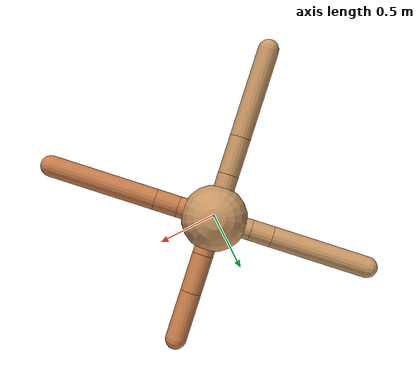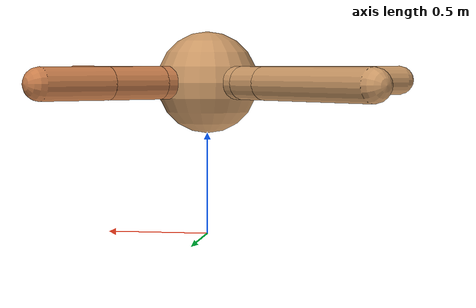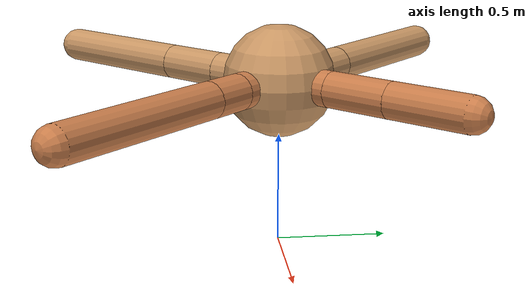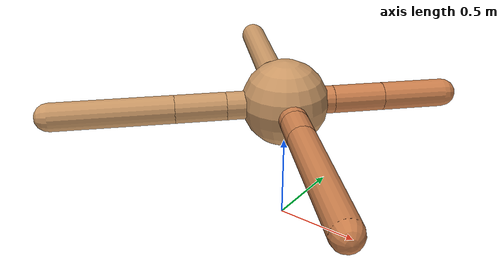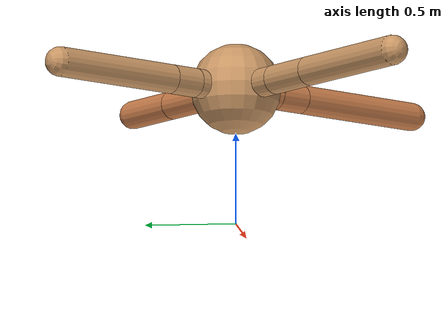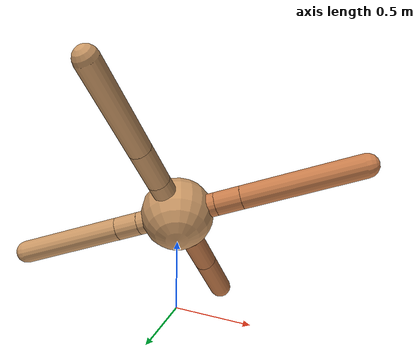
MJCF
<mujoco model="ant">
  <compiler angle="degree" coordinate="local" inertiafromgeom="true" />
  <option integrator="RK4" timestep="0.01" />
  <custom>
    <numeric data="0.0 0.0 0.55 1.0 0.0 0.0 0.0 0.0 1.0 0.0 -1.0 0.0 -1.0 0.0 1.0" name="init_qpos" />
  </custom>
  <default>
    <joint armature="1" damping="1" limited="true" />
    <geom conaffinity="0" condim="3" density="5.0" friction="1.5 0.1 0.1" margin="0.01" rgba="0.8 0.6 0.4 1" />
  </default>
  <worldbody>
    <body name="torso" pos="0 0 0.75">
      <geom name="torso_geom" pos="0 0 0" size="0.25" type="sphere" />

      <body name="front_left_leg" pos="0 0 0">
        <geom fromto="0.0 0.0 0.0 0.2 0.2 0.0" name="aux_1_geom" size="0.08" type="capsule" rgba=".8 .5 .3 1" />
        <body name="aux_1" pos="0.2 0.2 0.0">
          <joint axis="0 0 1" name="hip_1" pos="0.0 0.0 0.0" range="-40 40" type="hinge" />
          <geom fromto="0.0 0.0 0.0 0.20700240311557297 0.20700240311557297 0.0" name="left_leg_geom" size="0.08" type="capsule" rgba=".8 .5 .3 1" />
          <body pos="0.20700240311557297 0.20700240311557297 0.0" name="front_left_foot">
            <joint axis="-1 1 0" name="ankle_1" pos="0.0 0.0 0.0" range="30 100" type="hinge" />
            <geom fromto="0.0 0.0 0.0 0.25829891431069724 0.25829891431069724 0.0" name="left_ankle_geom" size="0.08" type="capsule" rgba=".8 .5 .3 1" />
          </body>
        </body>
      </body>
      <body name="front_right_leg" pos="0 0 0">
        <geom fromto="0.0 0.0 0.0 -0.2 0.2 0.0" name="aux_2_geom" size="0.08" type="capsule" />
        <body name="aux_2" pos="-0.2 0.2 0.0">
          <joint axis="0 0 1" name="hip_2" pos="0.0 0.0 0.0" range="-40 40" type="hinge" />
          <geom fromto="0.0 0.0 0.0 -0.11618640984864025 0.11618640984864025 0.0" name="right_leg_geom" size="0.08" type="capsule" />
          <body pos="-0.11618640984864025 0.11618640984864025 0.0" name="front_right_foot">
            <joint axis="1 1 0" name="ankle_2" pos="0.0 0.0 0.0" range="-100 -30" type="hinge" />
            <geom fromto="0.0 0.0 0.0 -0.5255658928360354 0.5255658928360354 0.0" name="right_ankle_geom" size="0.08" type="capsule" />
          </body>
        </body>
      </body>
      <body name="left_back_leg" pos="0 0 0">
        <geom fromto="0.0 0.0 0.0 -0.23967973341004067 -0.23967973341004067 0.0" name="aux_3_geom" size="0.08" type="capsule" />
        <body name="aux_3" pos="-0.23967973341004067 -0.23967973341004067 0.0">
          <joint axis="0 0 1" name="hip_3" pos="0.0 0.0 0.0" range="-40 40" type="hinge" />
          <geom fromto="0.0 0.0 0.0 -0.20559879564732772 -0.20559879564732772 0.0" name="back_leg_geom" size="0.08" type="capsule" />
          <body pos="-0.20559879564732772 -0.20559879564732772 0.0" name="left_back_foot">
            <joint axis="-1 1 0" name="ankle_3" pos="0.0 0.0 0.0" range="-100 -30" type="hinge" />
            <geom fromto="0.0 0.0 0.0 -0.4858314562930448 -0.4858314562930448 0.0" name="third_ankle_geom" size="0.08" type="capsule" />
          </body>
        </body>
      </body>
      <body name="right_back_leg" pos="0 0 0">
        <geom fromto="0.0 0.0 0.0 0.2 -0.2 0.0" name="aux_4_geom" size="0.08" type="capsule" rgba=".8 .5 .3 1" />
        <body name="aux_4" pos="0.2 -0.2 0.0">
          <joint axis="0 0 1" name="hip_4" pos="0.0 0.0 0.0" range="-40 40" type="hinge" />
          <geom fromto="0.0 0.0 0.0 0.12625603445543385 -0.12625603445543385 0.0" name="rightback_leg_geom" size="0.08" type="capsule" rgba=".8 .5 .3 1" />
          <body pos="0.12625603445543385 -0.12625603445543385 0.0" name="right_back_foot">
            <joint axis="1 1 0" name="ankle_4" pos="0.0 0.0 0.0" range="30 100" type="hinge" />
            <geom fromto="0.0 0.0 0.0 0.5752715082795626 -0.5752715082795626 0.0" name="fourth_ankle_geom" size="0.08" type="capsule" rgba=".8 .5 .3 1" />
          </body>
        </body>
      </body>
    </body>
  </worldbody>
  <actuator>
    <motor ctrllimited="true" ctrlrange="-1.0 1.0" joint="hip_4" gear="150" />
    <motor ctrllimited="true" ctrlrange="-1.0 1.0" joint="ankle_4" gear="150" />
    <motor ctrllimited="true" ctrlrange="-1.0 1.0" joint="hip_1" gear="150" />
    <motor ctrllimited="true" ctrlrange="-1.0 1.0" joint="ankle_1" gear="150" />
    <motor ctrllimited="true" ctrlrange="-1.0 1.0" joint="hip_2" gear="150" />
    <motor ctrllimited="true" ctrlrange="-1.0 1.0" joint="ankle_2" gear="150" />
    <motor ctrllimited="true" ctrlrange="-1.0 1.0" joint="hip_3" gear="150" />
    <motor ctrllimited="true" ctrlrange="-1.0 1.0" joint="ankle_3" gear="150" />
  </actuator>
</mujoco>
